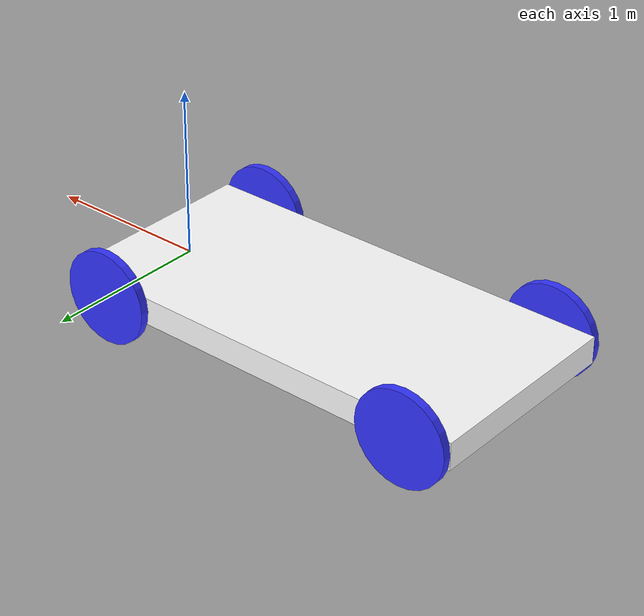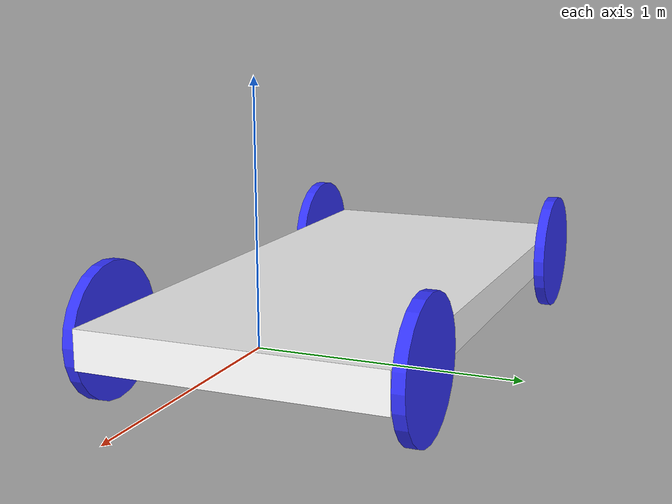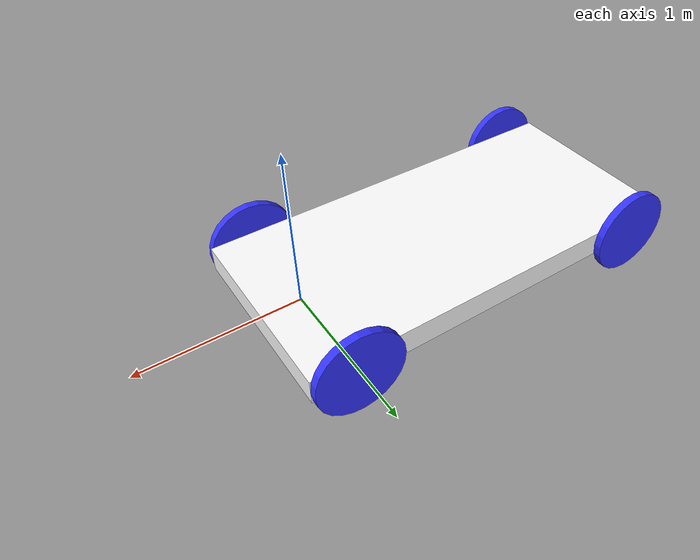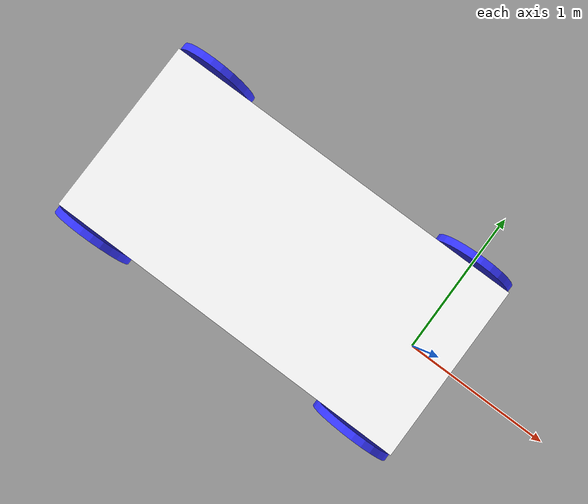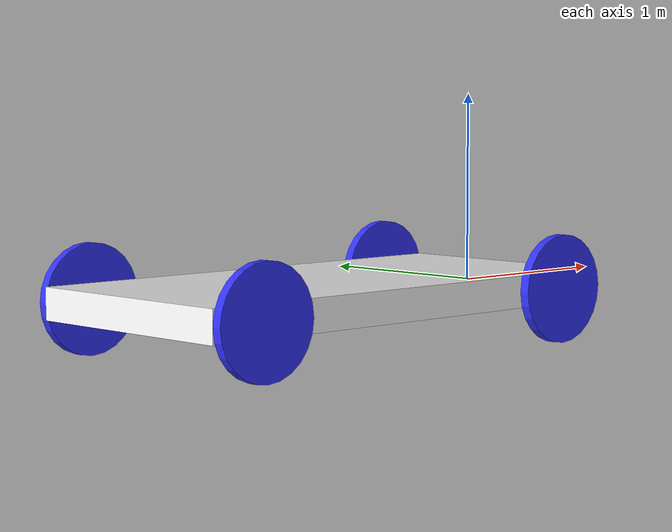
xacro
<?xml version="1.0"?>
<robot xmlns:xacro="http://www.ros.org/wiki/xacro">
<xacro:include filename="inertial_macros.xacro" />

    <material name="white">
        <color rgba="1 1 1 1" />
    </material>

    <material name="orange">
        <color rgba="1 0.3 0.1 1"/>
    </material>

    <material name="blue">
        <color rgba="0.2 0.2 1 1"/>
    </material>

    <material name="black">
        <color rgba="0 0 0 1"/>
    </material>

    <!-- BASE LINK -->
    <link name="base_link">

    </link>

    <!-- CHASSIS LINK -->
    <joint name="chassis_joint" type="fixed">
        <parent link="base_link"/>
        <child link="chassis"/>
        <origin xyz="-1.02 0 0"/>
    </joint>

    <link name="chassis">
        <visual>
            <origin xyz="0 0 0"/>
            <geometry>
                <box size="2.6 1.25 0.164"/>
            </geometry>
            <material name="white"/>
        </visual>
        <collision>
            <origin xyz="0 0 0"/>
            <geometry>
                <box size="2.6 1.25 0.164"/>
            </geometry>
        </collision>
        <xacro:inertial_box mass="500" x="2.6" y="1.25" z="0.164">
            <origin xyz="0.0 0 0.0" rpy="0 0 0"/>
        </xacro:inertial_box>
    </link>

    <!-- FRONT LEFT WHEEL LINK -->
    <joint name="front_left_wheel_joint" type="continuous">
        <parent link="base_link"/>
        <child link="front_left_wheel"/>
        <origin xyz="0 0.65 0" rpy="-${pi/2} 0 0"/>
        <axis xyz="0 0 1"/>
    </joint>

    <link name="front_left_wheel">
        <visual>
            <geometry>
                <cylinder radius="0.28" length="0.05"/>
            </geometry>
            <material name="blue"/>
        </visual>
        <collision>
            <geometry>
                <cylinder radius="0.28" length="0.05"/>
            </geometry>
        </collision>
        <xacro:inertial_cylinder mass="50" length="0.05" radius="0.28">
            <origin xyz="0 0 0" rpy="0 0 0"/>
        </xacro:inertial_cylinder>
    </link>

    <!-- FRONT RIGHT WHEEL LINK -->
    <joint name="front_right_wheel_joint" type="continuous">
        <parent link="base_link"/>
        <child link="front_right_wheel"/>
        <origin xyz="0 -0.65 0" rpy="${pi/2} 0 0"/>
        <axis xyz="0 0 -1"/>
    </joint>

    <link name="front_right_wheel">
        <visual>
            <geometry>
                <cylinder radius="0.28" length="0.05"/>
            </geometry>
            <material name="blue"/>
        </visual>
        <collision>
            <geometry>
                <cylinder radius="0.28" length="0.05"/>
            </geometry>
        </collision>
        <xacro:inertial_cylinder mass="50" length="0.05" radius="0.28">
            <origin xyz="0 0 0" rpy="0 0 0"/>
        </xacro:inertial_cylinder>
    </link>

    <!-- BACK LEFT WHEEL LINK -->
    <joint name="back_left_wheel_joint" type="continuous">
        <parent link="base_link"/>
        <child link="back_left_wheel"/>
        <origin xyz="-2.04 0.65 0" rpy="-${pi/2} 0 0"/>
        <axis xyz="0 0 1"/>
    </joint>

    <link name="back_left_wheel">
        <visual>
            <geometry>
                <cylinder radius="0.28" length="0.05"/>
            </geometry>
            <material name="blue"/>
        </visual>
        <collision>
            <geometry>
                <cylinder radius="0.28" length="0.05"/>
            </geometry>
        </collision>
        <xacro:inertial_cylinder mass="50" length="0.05" radius="0.28">
            <origin xyz="0 0 0" rpy="0 0 0"/>
        </xacro:inertial_cylinder>
    </link>

    <!-- BACK RIGHT WHEEL LINK -->
    <joint name="back_right_wheel_joint" type="continuous">
        <parent link="base_link"/>
        <child link="back_right_wheel"/>
        <origin xyz="-2.04 -0.65 0" rpy="${pi/2} 0 0"/>
        <axis xyz="0 0 -1"/>
    </joint>

    <link name="back_right_wheel">
        <visual>
            <geometry>
                <cylinder radius="0.28" length="0.05"/>
            </geometry>
            <material name="blue"/>
        </visual>
        <collision>
            <geometry>
                <cylinder radius="0.28" length="0.05"/>
            </geometry>
        </collision>
        <xacro:inertial_cylinder mass="50" length="0.05" radius="0.28">
            <origin xyz="0 0 0" rpy="0 0 0"/>
        </xacro:inertial_cylinder>
    </link>

</robot>
